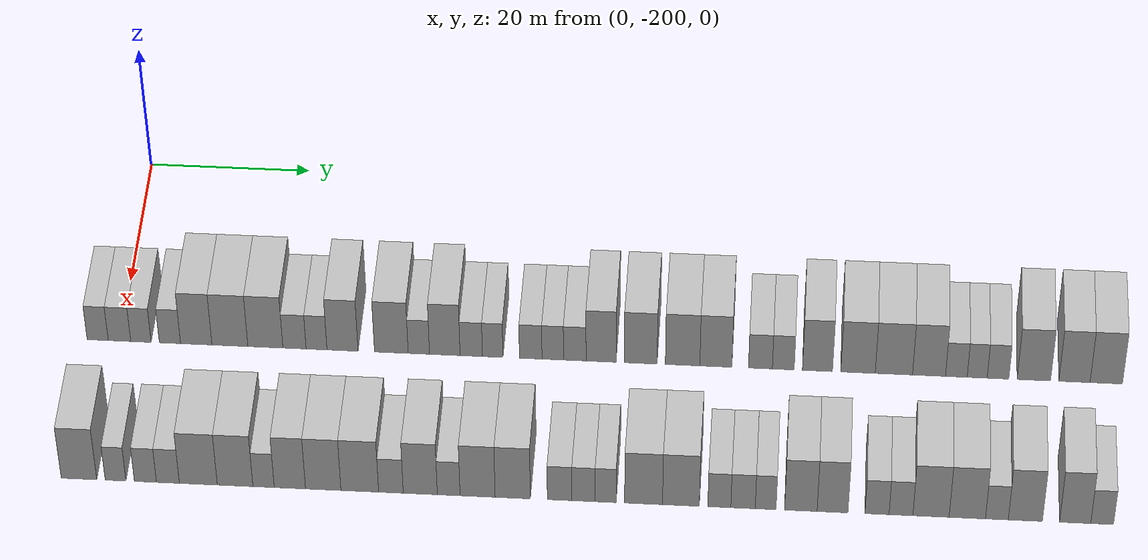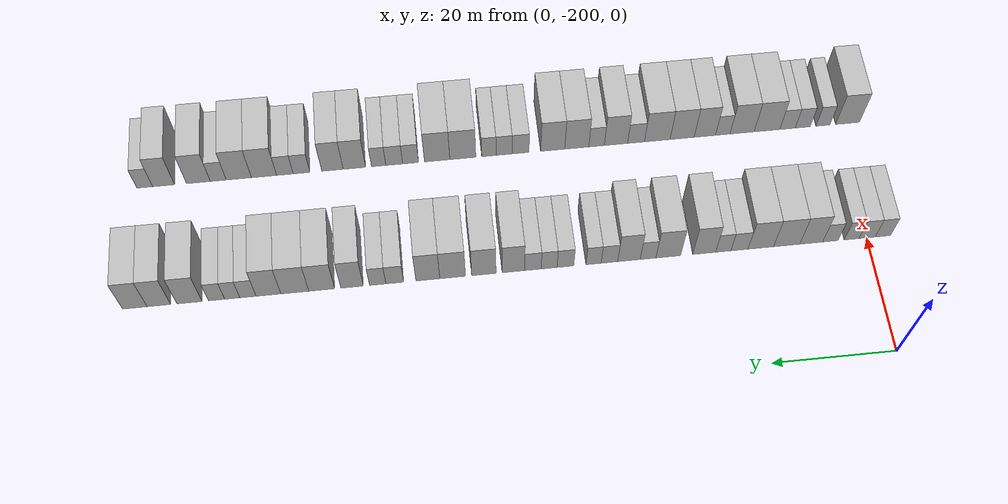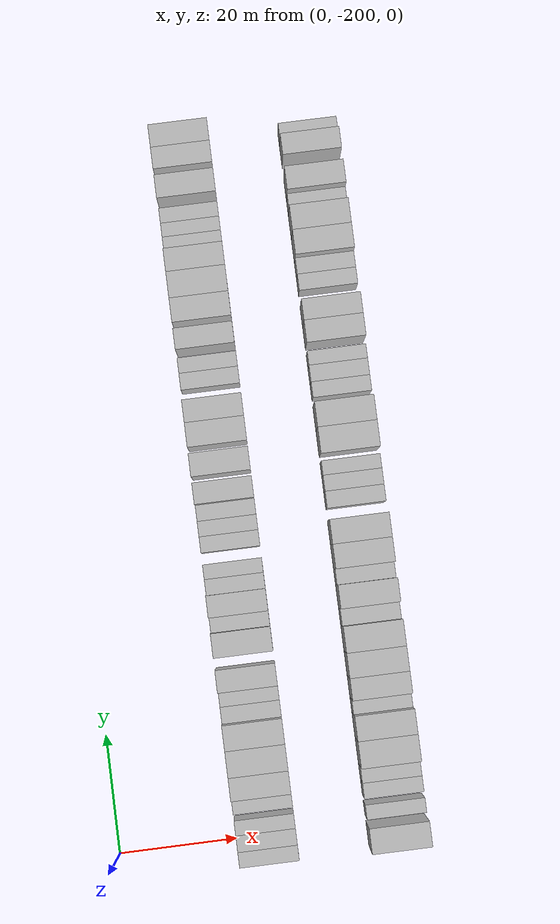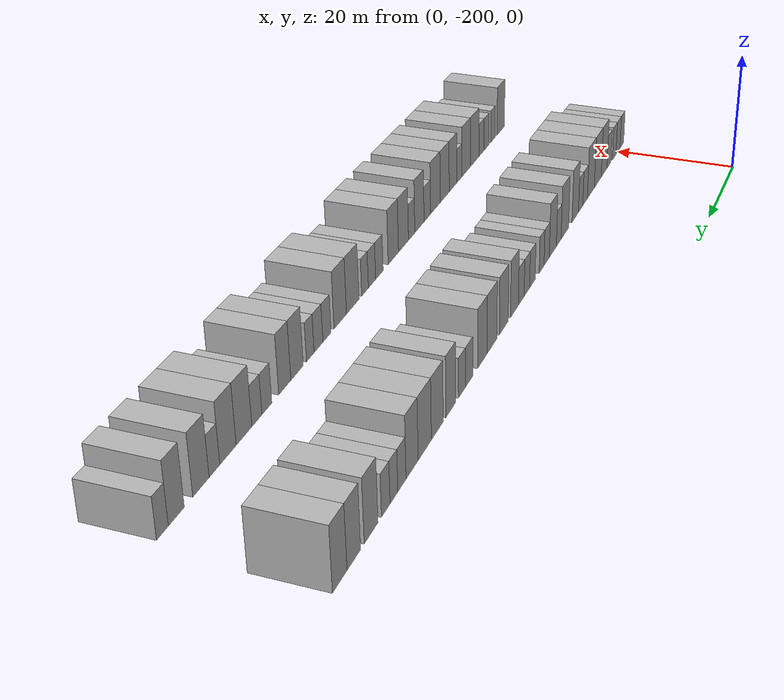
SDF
<sdf version="1.6">
 <world name="default">
  <model name="building_1">
   <static>1</static>
   <pose>25.0000 -202.7139 0 0.000000 0.000000 0.000000</pose>
   <link name="link">
    <pose>0 0 3.00 0 0 0</pose>
    <collision name="collision"><geometry><box><size>10.0000 2.5722 6.0000</size></box></geometry></collision>
    <visual name="visual">
     <cast_shadows>0</cast_shadows>
     <geometry><box><size>10.0000 2.5722 6.0000</size></box></geometry>
     <material>
      <script>
       <uri>model://HANNAS_wall/materials/scripts</uri>
       <uri>model://HANNAS_wall/materials/textures</uri>
       <name>vrc/HANNAS_wall</name>
      </script>
     </material>
    </visual>
   </link>
  </model>
  <model name="building_2">
   <static>1</static>
   <pose>25.0000 -200.0538 0 0.000000 0.000000 0.000000</pose>
   <link name="link">
    <pose>0 0 3.00 0 0 0</pose>
    <collision name="collision"><geometry><box><size>10.0000 2.7478 6.0000</size></box></geometry></collision>
    <visual name="visual">
     <cast_shadows>0</cast_shadows>
     <geometry><box><size>10.0000 2.7478 6.0000</size></box></geometry>
     <material>
      <script>
       <uri>model://HANNAS_wall/materials/scripts</uri>
       <uri>model://HANNAS_wall/materials/textures</uri>
       <name>vrc/HANNAS_wall</name>
      </script>
     </material>
    </visual>
   </link>
  </model>
  <model name="building_3">
   <static>1</static>
   <pose>25.0000 -197.4349 0 0.000000 0.000000 0.000000</pose>
   <link name="link">
    <pose>0 0 3.00 0 0 0</pose>
    <collision name="collision"><geometry><box><size>10.0000 2.4899 6.0000</size></box></geometry></collision>
    <visual name="visual">
     <cast_shadows>0</cast_shadows>
     <geometry><box><size>10.0000 2.4899 6.0000</size></box></geometry>
     <material>
      <script>
       <uri>model://HANNAS_wall/materials/scripts</uri>
       <uri>model://HANNAS_wall/materials/textures</uri>
       <name>vrc/HANNAS_wall</name>
      </script>
     </material>
    </visual>
   </link>
  </model>
  <model name="building_4">
   <static>1</static>
   <pose>25.0000 -193.8955 0 0.000000 0.000000 0.000000</pose>
   <link name="link">
    <pose>0 0 3.00 0 0 0</pose>
    <collision name="collision"><geometry><box><size>10.0000 2.5889 6.0000</size></box></geometry></collision>
    <visual name="visual">
     <cast_shadows>0</cast_shadows>
     <geometry><box><size>10.0000 2.5889 6.0000</size></box></geometry>
     <material>
      <script>
       <uri>model://HANNAS_wall/materials/scripts</uri>
       <uri>model://HANNAS_wall/materials/textures</uri>
       <name>vrc/HANNAS_wall</name>
      </script>
     </material>
    </visual>
   </link>
  </model>
  <model name="building_5">
   <static>1</static>
   <pose>25.0000 -190.6873 0 0.000000 0.000000 0.000000</pose>
   <link name="link">
    <pose>0 0 4.50 0 0 0</pose>
    <collision name="collision"><geometry><box><size>10.0000 3.8274 9.0000</size></box></geometry></collision>
    <visual name="visual">
     <cast_shadows>0</cast_shadows>
     <geometry><box><size>10.0000 3.8274 9.0000</size></box></geometry>
     <material>
      <script>
       <uri>model://HANNAS_wall/materials/scripts</uri>
       <uri>model://HANNAS_wall/materials/textures</uri>
       <name>vrc/HANNAS_wall</name>
      </script>
     </material>
    </visual>
   </link>
  </model>
  <model name="building_6">
   <static>1</static>
   <pose>25.0000 -186.5824 0 0.000000 0.000000 0.000000</pose>
   <link name="link">
    <pose>0 0 4.50 0 0 0</pose>
    <collision name="collision"><geometry><box><size>10.0000 4.3826 9.0000</size></box></geometry></collision>
    <visual name="visual">
     <cast_shadows>0</cast_shadows>
     <geometry><box><size>10.0000 4.3826 9.0000</size></box></geometry>
     <material>
      <script>
       <uri>model://HANNAS_wall/materials/scripts</uri>
       <uri>model://HANNAS_wall/materials/textures</uri>
       <name>vrc/HANNAS_wall</name>
      </script>
     </material>
    </visual>
   </link>
  </model>
  <model name="building_7">
   <static>1</static>
   <pose>25.0000 -182.2598 0 0.000000 0.000000 0.000000</pose>
   <link name="link">
    <pose>0 0 4.50 0 0 0</pose>
    <collision name="collision"><geometry><box><size>10.0000 4.2625 9.0000</size></box></geometry></collision>
    <visual name="visual">
     <cast_shadows>0</cast_shadows>
     <geometry><box><size>10.0000 4.2625 9.0000</size></box></geometry>
     <material>
      <script>
       <uri>model://HANNAS_wall/materials/scripts</uri>
       <uri>model://HANNAS_wall/materials/textures</uri>
       <name>vrc/HANNAS_wall</name>
      </script>
     </material>
    </visual>
   </link>
  </model>
  <model name="building_8">
   <static>1</static>
   <pose>25.0000 -178.7155 0 0.000000 0.000000 0.000000</pose>
   <link name="link">
    <pose>0 0 3.00 0 0 0</pose>
    <collision name="collision"><geometry><box><size>10.0000 2.8261 6.0000</size></box></geometry></collision>
    <visual name="visual">
     <cast_shadows>0</cast_shadows>
     <geometry><box><size>10.0000 2.8261 6.0000</size></box></geometry>
     <material>
      <script>
       <uri>model://HANNAS_wall/materials/scripts</uri>
       <uri>model://HANNAS_wall/materials/textures</uri>
       <name>vrc/HANNAS_wall</name>
      </script>
     </material>
    </visual>
   </link>
  </model>
  <model name="building_9">
   <static>1</static>
   <pose>25.0000 -176.0333 0 0.000000 0.000000 0.000000</pose>
   <link name="link">
    <pose>0 0 3.00 0 0 0</pose>
    <collision name="collision"><geometry><box><size>10.0000 2.5383 6.0000</size></box></geometry></collision>
    <visual name="visual">
     <cast_shadows>0</cast_shadows>
     <geometry><box><size>10.0000 2.5383 6.0000</size></box></geometry>
     <material>
      <script>
       <uri>model://HANNAS_wall/materials/scripts</uri>
       <uri>model://HANNAS_wall/materials/textures</uri>
       <name>vrc/HANNAS_wall</name>
      </script>
     </material>
    </visual>
   </link>
  </model>
  <model name="building_10">
   <static>1</static>
   <pose>25.0000 -172.8733 0 0.000000 0.000000 0.000000</pose>
   <link name="link">
    <pose>0 0 4.50 0 0 0</pose>
    <collision name="collision"><geometry><box><size>10.0000 3.7818 9.0000</size></box></geometry></collision>
    <visual name="visual">
     <cast_shadows>0</cast_shadows>
     <geometry><box><size>10.0000 3.7818 9.0000</size></box></geometry>
     <material>
      <script>
       <uri>model://HANNAS_wall/materials/scripts</uri>
       <uri>model://HANNAS_wall/materials/textures</uri>
       <name>vrc/HANNAS_wall</name>
      </script>
     </material>
    </visual>
   </link>
  </model>
  <model name="building_11">
   <static>1</static>
   <pose>25.0000 -166.9382 0 0.000000 0.000000 0.000000</pose>
   <link name="link">
    <pose>0 0 4.50 0 0 0</pose>
    <collision name="collision"><geometry><box><size>10.0000 4.0884 9.0000</size></box></geometry></collision>
    <visual name="visual">
     <cast_shadows>0</cast_shadows>
     <geometry><box><size>10.0000 4.0884 9.0000</size></box></geometry>
     <material>
      <script>
       <uri>model://HANNAS_wall/materials/scripts</uri>
       <uri>model://HANNAS_wall/materials/textures</uri>
       <name>vrc/HANNAS_wall</name>
      </script>
     </material>
    </visual>
   </link>
  </model>
  <model name="building_12">
   <static>1</static>
   <pose>25.0000 -163.5967 0 0.000000 0.000000 0.000000</pose>
   <link name="link">
    <pose>0 0 3.00 0 0 0</pose>
    <collision name="collision"><geometry><box><size>10.0000 2.5944 6.0000</size></box></geometry></collision>
    <visual name="visual">
     <cast_shadows>0</cast_shadows>
     <geometry><box><size>10.0000 2.5944 6.0000</size></box></geometry>
     <material>
      <script>
       <uri>model://HANNAS_wall/materials/scripts</uri>
       <uri>model://HANNAS_wall/materials/textures</uri>
       <name>vrc/HANNAS_wall</name>
      </script>
     </material>
    </visual>
   </link>
  </model>
  <model name="building_13">
   <static>1</static>
   <pose>25.0000 -160.4428 0 0.000000 0.000000 0.000000</pose>
   <link name="link">
    <pose>0 0 4.50 0 0 0</pose>
    <collision name="collision"><geometry><box><size>10.0000 3.7134 9.0000</size></box></geometry></collision>
    <visual name="visual">
     <cast_shadows>0</cast_shadows>
     <geometry><box><size>10.0000 3.7134 9.0000</size></box></geometry>
     <material>
      <script>
       <uri>model://HANNAS_wall/materials/scripts</uri>
       <uri>model://HANNAS_wall/materials/textures</uri>
       <name>vrc/HANNAS_wall</name>
      </script>
     </material>
    </visual>
   </link>
  </model>
  <model name="building_14">
   <static>1</static>
   <pose>25.0000 -157.2319 0 0.000000 0.000000 0.000000</pose>
   <link name="link">
    <pose>0 0 3.00 0 0 0</pose>
    <collision name="collision"><geometry><box><size>10.0000 2.7084 6.0000</size></box></geometry></collision>
    <visual name="visual">
     <cast_shadows>0</cast_shadows>
     <geometry><box><size>10.0000 2.7084 6.0000</size></box></geometry>
     <material>
      <script>
       <uri>model://HANNAS_wall/materials/scripts</uri>
       <uri>model://HANNAS_wall/materials/textures</uri>
       <name>vrc/HANNAS_wall</name>
      </script>
     </material>
    </visual>
   </link>
  </model>
  <model name="building_15">
   <static>1</static>
   <pose>25.0000 -154.6331 0 0.000000 0.000000 0.000000</pose>
   <link name="link">
    <pose>0 0 3.00 0 0 0</pose>
    <collision name="collision"><geometry><box><size>10.0000 2.4892 6.0000</size></box></geometry></collision>
    <visual name="visual">
     <cast_shadows>0</cast_shadows>
     <geometry><box><size>10.0000 2.4892 6.0000</size></box></geometry>
     <material>
      <script>
       <uri>model://HANNAS_wall/materials/scripts</uri>
       <uri>model://HANNAS_wall/materials/textures</uri>
       <name>vrc/HANNAS_wall</name>
      </script>
     </material>
    </visual>
   </link>
  </model>
  <model name="building_16">
   <static>1</static>
   <pose>25.0000 -150.0213 0 0.000000 0.000000 0.000000</pose>
   <link name="link">
    <pose>0 0 3.00 0 0 0</pose>
    <collision name="collision"><geometry><box><size>10.0000 2.7342 6.0000</size></box></geometry></collision>
    <visual name="visual">
     <cast_shadows>0</cast_shadows>
     <geometry><box><size>10.0000 2.7342 6.0000</size></box></geometry>
     <material>
      <script>
       <uri>model://HANNAS_wall/materials/scripts</uri>
       <uri>model://HANNAS_wall/materials/textures</uri>
       <name>vrc/HANNAS_wall</name>
      </script>
     </material>
    </visual>
   </link>
  </model>
  <model name="building_17">
   <static>1</static>
   <pose>25.0000 -147.3507 0 0.000000 0.000000 0.000000</pose>
   <link name="link">
    <pose>0 0 3.00 0 0 0</pose>
    <collision name="collision"><geometry><box><size>10.0000 2.6071 6.0000</size></box></geometry></collision>
    <visual name="visual">
     <cast_shadows>0</cast_shadows>
     <geometry><box><size>10.0000 2.6071 6.0000</size></box></geometry>
     <material>
      <script>
       <uri>model://HANNAS_wall/materials/scripts</uri>
       <uri>model://HANNAS_wall/materials/textures</uri>
       <name>vrc/HANNAS_wall</name>
      </script>
     </material>
    </visual>
   </link>
  </model>
  <model name="building_18">
   <static>1</static>
   <pose>25.0000 -144.6837 0 0.000000 0.000000 0.000000</pose>
   <link name="link">
    <pose>0 0 3.00 0 0 0</pose>
    <collision name="collision"><geometry><box><size>10.0000 2.7267 6.0000</size></box></geometry></collision>
    <visual name="visual">
     <cast_shadows>0</cast_shadows>
     <geometry><box><size>10.0000 2.7267 6.0000</size></box></geometry>
     <material>
      <script>
       <uri>model://HANNAS_wall/materials/scripts</uri>
       <uri>model://HANNAS_wall/materials/textures</uri>
       <name>vrc/HANNAS_wall</name>
      </script>
     </material>
    </visual>
   </link>
  </model>
  <model name="building_19">
   <static>1</static>
   <pose>25.0000 -141.5038 0 0.000000 0.000000 0.000000</pose>
   <link name="link">
    <pose>0 0 4.50 0 0 0</pose>
    <collision name="collision"><geometry><box><size>10.0000 3.6330 9.0000</size></box></geometry></collision>
    <visual name="visual">
     <cast_shadows>0</cast_shadows>
     <geometry><box><size>10.0000 3.6330 9.0000</size></box></geometry>
     <material>
      <script>
       <uri>model://HANNAS_wall/materials/scripts</uri>
       <uri>model://HANNAS_wall/materials/textures</uri>
       <name>vrc/HANNAS_wall</name>
      </script>
     </material>
    </visual>
   </link>
  </model>
  <model name="building_20">
   <static>1</static>
   <pose>25.0000 -136.7051 0 0.000000 0.000000 0.000000</pose>
   <link name="link">
    <pose>0 0 4.50 0 0 0</pose>
    <collision name="collision"><geometry><box><size>10.0000 3.9644 9.0000</size></box></geometry></collision>
    <visual name="visual">
     <cast_shadows>0</cast_shadows>
     <geometry><box><size>10.0000 3.9644 9.0000</size></box></geometry>
     <material>
      <script>
       <uri>model://HANNAS_wall/materials/scripts</uri>
       <uri>model://HANNAS_wall/materials/textures</uri>
       <name>vrc/HANNAS_wall</name>
      </script>
     </material>
    </visual>
   </link>
  </model>
  <model name="building_21">
   <static>1</static>
   <pose>25.0000 -131.6395 0 0.000000 0.000000 0.000000</pose>
   <link name="link">
    <pose>0 0 4.50 0 0 0</pose>
    <collision name="collision"><geometry><box><size>10.0000 4.1667 9.0000</size></box></geometry></collision>
    <visual name="visual">
     <cast_shadows>0</cast_shadows>
     <geometry><box><size>10.0000 4.1667 9.0000</size></box></geometry>
     <material>
      <script>
       <uri>model://HANNAS_wall/materials/scripts</uri>
       <uri>model://HANNAS_wall/materials/textures</uri>
       <name>vrc/HANNAS_wall</name>
      </script>
     </material>
    </visual>
   </link>
  </model>
  <model name="building_22">
   <static>1</static>
   <pose>25.0000 -127.6203 0 0.000000 0.000000 0.000000</pose>
   <link name="link">
    <pose>0 0 4.50 0 0 0</pose>
    <collision name="collision"><geometry><box><size>10.0000 3.8717 9.0000</size></box></geometry></collision>
    <visual name="visual">
     <cast_shadows>0</cast_shadows>
     <geometry><box><size>10.0000 3.8717 9.0000</size></box></geometry>
     <material>
      <script>
       <uri>model://HANNAS_wall/materials/scripts</uri>
       <uri>model://HANNAS_wall/materials/textures</uri>
       <name>vrc/HANNAS_wall</name>
      </script>
     </material>
    </visual>
   </link>
  </model>
  <model name="building_23">
   <static>1</static>
   <pose>25.0000 -122.2472 0 0.000000 0.000000 0.000000</pose>
   <link name="link">
    <pose>0 0 3.00 0 0 0</pose>
    <collision name="collision"><geometry><box><size>10.0000 2.8745 6.0000</size></box></geometry></collision>
    <visual name="visual">
     <cast_shadows>0</cast_shadows>
     <geometry><box><size>10.0000 2.8745 6.0000</size></box></geometry>
     <material>
      <script>
       <uri>model://HANNAS_wall/materials/scripts</uri>
       <uri>model://HANNAS_wall/materials/textures</uri>
       <name>vrc/HANNAS_wall</name>
      </script>
     </material>
    </visual>
   </link>
  </model>
  <model name="building_24">
   <static>1</static>
   <pose>25.0000 -119.4918 0 0.000000 0.000000 0.000000</pose>
   <link name="link">
    <pose>0 0 3.00 0 0 0</pose>
    <collision name="collision"><geometry><box><size>10.0000 2.6363 6.0000</size></box></geometry></collision>
    <visual name="visual">
     <cast_shadows>0</cast_shadows>
     <geometry><box><size>10.0000 2.6363 6.0000</size></box></geometry>
     <material>
      <script>
       <uri>model://HANNAS_wall/materials/scripts</uri>
       <uri>model://HANNAS_wall/materials/textures</uri>
       <name>vrc/HANNAS_wall</name>
      </script>
     </material>
    </visual>
   </link>
  </model>
  <model name="building_25">
   <static>1</static>
   <pose>25.0000 -115.3635 0 0.000000 0.000000 0.000000</pose>
   <link name="link">
    <pose>0 0 4.50 0 0 0</pose>
    <collision name="collision"><geometry><box><size>10.0000 3.6204 9.0000</size></box></geometry></collision>
    <visual name="visual">
     <cast_shadows>0</cast_shadows>
     <geometry><box><size>10.0000 3.6204 9.0000</size></box></geometry>
     <material>
      <script>
       <uri>model://HANNAS_wall/materials/scripts</uri>
       <uri>model://HANNAS_wall/materials/textures</uri>
       <name>vrc/HANNAS_wall</name>
      </script>
     </material>
    </visual>
   </link>
  </model>
  <model name="building_26">
   <static>1</static>
   <pose>25.0000 -110.4775 0 0.000000 0.000000 0.000000</pose>
   <link name="link">
    <pose>0 0 4.50 0 0 0</pose>
    <collision name="collision"><geometry><box><size>10.0000 4.1515 9.0000</size></box></geometry></collision>
    <visual name="visual">
     <cast_shadows>0</cast_shadows>
     <geometry><box><size>10.0000 4.1515 9.0000</size></box></geometry>
     <material>
      <script>
       <uri>model://HANNAS_wall/materials/scripts</uri>
       <uri>model://HANNAS_wall/materials/textures</uri>
       <name>vrc/HANNAS_wall</name>
      </script>
     </material>
    </visual>
   </link>
  </model>
  <model name="building_27">
   <static>1</static>
   <pose>25.0000 -106.1570 0 0.000000 0.000000 0.000000</pose>
   <link name="link">
    <pose>0 0 4.50 0 0 0</pose>
    <collision name="collision"><geometry><box><size>10.0000 4.4896 9.0000</size></box></geometry></collision>
    <visual name="visual">
     <cast_shadows>0</cast_shadows>
     <geometry><box><size>10.0000 4.4896 9.0000</size></box></geometry>
     <material>
      <script>
       <uri>model://HANNAS_wall/materials/scripts</uri>
       <uri>model://HANNAS_wall/materials/textures</uri>
       <name>vrc/HANNAS_wall</name>
      </script>
     </material>
    </visual>
   </link>
  </model>
  <model name="building_28">
   <static>1</static>
   <pose>25.0000 -101.9284 0 0.000000 0.000000 0.000000</pose>
   <link name="link">
    <pose>0 0 4.50 0 0 0</pose>
    <collision name="collision"><geometry><box><size>10.0000 3.9677 9.0000</size></box></geometry></collision>
    <visual name="visual">
     <cast_shadows>0</cast_shadows>
     <geometry><box><size>10.0000 3.9677 9.0000</size></box></geometry>
     <material>
      <script>
       <uri>model://HANNAS_wall/materials/scripts</uri>
       <uri>model://HANNAS_wall/materials/textures</uri>
       <name>vrc/HANNAS_wall</name>
      </script>
     </material>
    </visual>
   </link>
  </model>
  <model name="building_29">
   <static>1</static>
   <pose>25.0000 -98.6399 0 0.000000 0.000000 0.000000</pose>
   <link name="link">
    <pose>0 0 3.00 0 0 0</pose>
    <collision name="collision"><geometry><box><size>10.0000 2.6093 6.0000</size></box></geometry></collision>
    <visual name="visual">
     <cast_shadows>0</cast_shadows>
     <geometry><box><size>10.0000 2.6093 6.0000</size></box></geometry>
     <material>
      <script>
       <uri>model://HANNAS_wall/materials/scripts</uri>
       <uri>model://HANNAS_wall/materials/textures</uri>
       <name>vrc/HANNAS_wall</name>
      </script>
     </material>
    </visual>
   </link>
  </model>
  <model name="building_30">
   <static>1</static>
   <pose>25.0000 -96.1334 0 0.000000 0.000000 0.000000</pose>
   <link name="link">
    <pose>0 0 3.00 0 0 0</pose>
    <collision name="collision"><geometry><box><size>10.0000 2.4037 6.0000</size></box></geometry></collision>
    <visual name="visual">
     <cast_shadows>0</cast_shadows>
     <geometry><box><size>10.0000 2.4037 6.0000</size></box></geometry>
     <material>
      <script>
       <uri>model://HANNAS_wall/materials/scripts</uri>
       <uri>model://HANNAS_wall/materials/textures</uri>
       <name>vrc/HANNAS_wall</name>
      </script>
     </material>
    </visual>
   </link>
  </model>
  <model name="building_31">
   <static>1</static>
   <pose>25.0000 -93.6312 0 0.000000 0.000000 0.000000</pose>
   <link name="link">
    <pose>0 0 3.00 0 0 0</pose>
    <collision name="collision"><geometry><box><size>10.0000 2.6006 6.0000</size></box></geometry></collision>
    <visual name="visual">
     <cast_shadows>0</cast_shadows>
     <geometry><box><size>10.0000 2.6006 6.0000</size></box></geometry>
     <material>
      <script>
       <uri>model://HANNAS_wall/materials/scripts</uri>
       <uri>model://HANNAS_wall/materials/textures</uri>
       <name>vrc/HANNAS_wall</name>
      </script>
     </material>
    </visual>
   </link>
  </model>
  <model name="building_32">
   <static>1</static>
   <pose>25.0000 -89.3238 0 0.000000 0.000000 0.000000</pose>
   <link name="link">
    <pose>0 0 4.50 0 0 0</pose>
    <collision name="collision"><geometry><box><size>10.0000 4.0141 9.0000</size></box></geometry></collision>
    <visual name="visual">
     <cast_shadows>0</cast_shadows>
     <geometry><box><size>10.0000 4.0141 9.0000</size></box></geometry>
     <material>
      <script>
       <uri>model://HANNAS_wall/materials/scripts</uri>
       <uri>model://HANNAS_wall/materials/textures</uri>
       <name>vrc/HANNAS_wall</name>
      </script>
     </material>
    </visual>
   </link>
  </model>
  <model name="building_33">
   <static>1</static>
   <pose>25.0000 -84.4462 0 0.000000 0.000000 0.000000</pose>
   <link name="link">
    <pose>0 0 4.50 0 0 0</pose>
    <collision name="collision"><geometry><box><size>10.0000 3.7413 9.0000</size></box></geometry></collision>
    <visual name="visual">
     <cast_shadows>0</cast_shadows>
     <geometry><box><size>10.0000 3.7413 9.0000</size></box></geometry>
     <material>
      <script>
       <uri>model://HANNAS_wall/materials/scripts</uri>
       <uri>model://HANNAS_wall/materials/textures</uri>
       <name>vrc/HANNAS_wall</name>
      </script>
     </material>
    </visual>
   </link>
  </model>
  <model name="building_34">
   <static>1</static>
   <pose>25.0000 -80.6337 0 0.000000 0.000000 0.000000</pose>
   <link name="link">
    <pose>0 0 4.50 0 0 0</pose>
    <collision name="collision"><geometry><box><size>10.0000 3.8836 9.0000</size></box></geometry></collision>
    <visual name="visual">
     <cast_shadows>0</cast_shadows>
     <geometry><box><size>10.0000 3.8836 9.0000</size></box></geometry>
     <material>
      <script>
       <uri>model://HANNAS_wall/materials/scripts</uri>
       <uri>model://HANNAS_wall/materials/textures</uri>
       <name>vrc/HANNAS_wall</name>
      </script>
     </material>
    </visual>
   </link>
  </model>
  <model name="building_106">
   <static>1</static>
   <pose>47.0000 -201.8914 0 0.000000 0.000000 0.000000</pose>
   <link name="link">
    <pose>0 0 4.50 0 0 0</pose>
    <collision name="collision"><geometry><box><size>10.0000 4.2173 9.0000</size></box></geometry></collision>
    <visual name="visual">
     <cast_shadows>0</cast_shadows>
     <geometry><box><size>10.0000 4.2173 9.0000</size></box></geometry>
     <material>
      <script>
       <uri>model://HANNAS_wall/materials/scripts</uri>
       <uri>model://HANNAS_wall/materials/textures</uri>
       <name>vrc/HANNAS_wall</name>
      </script>
     </material>
    </visual>
   </link>
  </model>
  <model name="building_107">
   <static>1</static>
   <pose>47.0000 -197.5536 0 0.000000 0.000000 0.000000</pose>
   <link name="link">
    <pose>0 0 3.00 0 0 0</pose>
    <collision name="collision"><geometry><box><size>10.0000 2.4583 6.0000</size></box></geometry></collision>
    <visual name="visual">
     <cast_shadows>0</cast_shadows>
     <geometry><box><size>10.0000 2.4583 6.0000</size></box></geometry>
     <material>
      <script>
       <uri>model://HANNAS_wall/materials/scripts</uri>
       <uri>model://HANNAS_wall/materials/textures</uri>
       <name>vrc/HANNAS_wall</name>
      </script>
     </material>
    </visual>
   </link>
  </model>
  <model name="building_108">
   <static>1</static>
   <pose>47.0000 -194.0164 0 0.000000 0.000000 0.000000</pose>
   <link name="link">
    <pose>0 0 3.00 0 0 0</pose>
    <collision name="collision"><geometry><box><size>10.0000 2.6161 6.0000</size></box></geometry></collision>
    <visual name="visual">
     <cast_shadows>0</cast_shadows>
     <geometry><box><size>10.0000 2.6161 6.0000</size></box></geometry>
     <material>
      <script>
       <uri>model://HANNAS_wall/materials/scripts</uri>
       <uri>model://HANNAS_wall/materials/textures</uri>
       <name>vrc/HANNAS_wall</name>
      </script>
     </material>
    </visual>
   </link>
  </model>
  <model name="building_109">
   <static>1</static>
   <pose>47.0000 -191.3514 0 0.000000 0.000000 0.000000</pose>
   <link name="link">
    <pose>0 0 3.00 0 0 0</pose>
    <collision name="collision"><geometry><box><size>10.0000 2.7139 6.0000</size></box></geometry></collision>
    <visual name="visual">
     <cast_shadows>0</cast_shadows>
     <geometry><box><size>10.0000 2.7139 6.0000</size></box></geometry>
     <material>
      <script>
       <uri>model://HANNAS_wall/materials/scripts</uri>
       <uri>model://HANNAS_wall/materials/textures</uri>
       <name>vrc/HANNAS_wall</name>
      </script>
     </material>
    </visual>
   </link>
  </model>
  <model name="building_110">
   <static>1</static>
   <pose>47.0000 -187.7495 0 0.000000 0.000000 0.000000</pose>
   <link name="link">
    <pose>0 0 4.50 0 0 0</pose>
    <collision name="collision"><geometry><box><size>10.0000 4.4899 9.0000</size></box></geometry></collision>
    <visual name="visual">
     <cast_shadows>0</cast_shadows>
     <geometry><box><size>10.0000 4.4899 9.0000</size></box></geometry>
     <material>
      <script>
       <uri>model://HANNAS_wall/materials/scripts</uri>
       <uri>model://HANNAS_wall/materials/textures</uri>
       <name>vrc/HANNAS_wall</name>
      </script>
     </material>
    </visual>
   </link>
  </model>
  <model name="building_111">
   <static>1</static>
   <pose>47.0000 -183.3992 0 0.000000 0.000000 0.000000</pose>
   <link name="link">
    <pose>0 0 4.50 0 0 0</pose>
    <collision name="collision"><geometry><box><size>10.0000 4.2108 9.0000</size></box></geometry></collision>
    <visual name="visual">
     <cast_shadows>0</cast_shadows>
     <geometry><box><size>10.0000 4.2108 9.0000</size></box></geometry>
     <material>
      <script>
       <uri>model://HANNAS_wall/materials/scripts</uri>
       <uri>model://HANNAS_wall/materials/textures</uri>
       <name>vrc/HANNAS_wall</name>
      </script>
     </material>
    </visual>
   </link>
  </model>
  <model name="building_112">
   <static>1</static>
   <pose>47.0000 -180.0337 0 0.000000 0.000000 0.000000</pose>
   <link name="link">
    <pose>0 0 3.00 0 0 0</pose>
    <collision name="collision"><geometry><box><size>10.0000 2.5201 6.0000</size></box></geometry></collision>
    <visual name="visual">
     <cast_shadows>0</cast_shadows>
     <geometry><box><size>10.0000 2.5201 6.0000</size></box></geometry>
     <material>
      <script>
       <uri>model://HANNAS_wall/materials/scripts</uri>
       <uri>model://HANNAS_wall/materials/textures</uri>
       <name>vrc/HANNAS_wall</name>
      </script>
     </material>
    </visual>
   </link>
  </model>
  <model name="building_113">
   <static>1</static>
   <pose>47.0000 -176.9265 0 0.000000 0.000000 0.000000</pose>
   <link name="link">
    <pose>0 0 4.50 0 0 0</pose>
    <collision name="collision"><geometry><box><size>10.0000 3.6944 9.0000</size></box></geometry></collision>
    <visual name="visual">
     <cast_shadows>0</cast_shadows>
     <geometry><box><size>10.0000 3.6944 9.0000</size></box></geometry>
     <material>
      <script>
       <uri>model://HANNAS_wall/materials/scripts</uri>
       <uri>model://HANNAS_wall/materials/textures</uri>
       <name>vrc/HANNAS_wall</name>
      </script>
     </material>
    </visual>
   </link>
  </model>
  <model name="building_114">
   <static>1</static>
   <pose>47.0000 -172.9864 0 0.000000 0.000000 0.000000</pose>
   <link name="link">
    <pose>0 0 4.50 0 0 0</pose>
    <collision name="collision"><geometry><box><size>10.0000 4.1857 9.0000</size></box></geometry></collision>
    <visual name="visual">
     <cast_shadows>0</cast_shadows>
     <geometry><box><size>10.0000 4.1857 9.0000</size></box></geometry>
     <material>
      <script>
       <uri>model://HANNAS_wall/materials/scripts</uri>
       <uri>model://HANNAS_wall/materials/textures</uri>
       <name>vrc/HANNAS_wall</name>
      </script>
     </material>
    </visual>
   </link>
  </model>
  <model name="building_115">
   <static>1</static>
   <pose>47.0000 -168.6690 0 0.000000 0.000000 0.000000</pose>
   <link name="link">
    <pose>0 0 4.50 0 0 0</pose>
    <collision name="collision"><geometry><box><size>10.0000 4.4491 9.0000</size></box></geometry></collision>
    <visual name="visual">
     <cast_shadows>0</cast_shadows>
     <geometry><box><size>10.0000 4.4491 9.0000</size></box></geometry>
     <material>
      <script>
       <uri>model://HANNAS_wall/materials/scripts</uri>
       <uri>model://HANNAS_wall/materials/textures</uri>
       <name>vrc/HANNAS_wall</name>
      </script>
     </material>
    </visual>
   </link>
  </model>
  <model name="building_116">
   <static>1</static>
   <pose>47.0000 -164.9905 0 0.000000 0.000000 0.000000</pose>
   <link name="link">
    <pose>0 0 3.00 0 0 0</pose>
    <collision name="collision"><geometry><box><size>10.0000 2.9078 6.0000</size></box></geometry></collision>
    <visual name="visual">
     <cast_shadows>0</cast_shadows>
     <geometry><box><size>10.0000 2.9078 6.0000</size></box></geometry>
     <material>
      <script>
       <uri>model://HANNAS_wall/materials/scripts</uri>
       <uri>model://HANNAS_wall/materials/textures</uri>
       <name>vrc/HANNAS_wall</name>
      </script>
     </material>
    </visual>
   </link>
  </model>
  <model name="building_117">
   <static>1</static>
   <pose>47.0000 -161.5276 0 0.000000 0.000000 0.000000</pose>
   <link name="link">
    <pose>0 0 4.50 0 0 0</pose>
    <collision name="collision"><geometry><box><size>10.0000 4.0180 9.0000</size></box></geometry></collision>
    <visual name="visual">
     <cast_shadows>0</cast_shadows>
     <geometry><box><size>10.0000 4.0180 9.0000</size></box></geometry>
     <material>
      <script>
       <uri>model://HANNAS_wall/materials/scripts</uri>
       <uri>model://HANNAS_wall/materials/textures</uri>
       <name>vrc/HANNAS_wall</name>
      </script>
     </material>
    </visual>
   </link>
  </model>
  <model name="building_118">
   <static>1</static>
   <pose>47.0000 -158.1796 0 0.000000 0.000000 0.000000</pose>
   <link name="link">
    <pose>0 0 3.00 0 0 0</pose>
    <collision name="collision"><geometry><box><size>10.0000 2.6779 6.0000</size></box></geometry></collision>
    <visual name="visual">
     <cast_shadows>0</cast_shadows>
     <geometry><box><size>10.0000 2.6779 6.0000</size></box></geometry>
     <material>
      <script>
       <uri>model://HANNAS_wall/materials/scripts</uri>
       <uri>model://HANNAS_wall/materials/textures</uri>
       <name>vrc/HANNAS_wall</name>
      </script>
     </material>
    </visual>
   </link>
  </model>
  <model name="building_119">
   <static>1</static>
   <pose>47.0000 -154.7746 0 0.000000 0.000000 0.000000</pose>
   <link name="link">
    <pose>0 0 4.50 0 0 0</pose>
    <collision name="collision"><geometry><box><size>10.0000 4.1321 9.0000</size></box></geometry></collision>
    <visual name="visual">
     <cast_shadows>0</cast_shadows>
     <geometry><box><size>10.0000 4.1321 9.0000</size></box></geometry>
     <material>
      <script>
       <uri>model://HANNAS_wall/materials/scripts</uri>
       <uri>model://HANNAS_wall/materials/textures</uri>
       <name>vrc/HANNAS_wall</name>
      </script>
     </material>
    </visual>
   </link>
  </model>
  <model name="building_120">
   <static>1</static>
   <pose>47.0000 -150.6351 0 0.000000 0.000000 0.000000</pose>
   <link name="link">
    <pose>0 0 4.50 0 0 0</pose>
    <collision name="collision"><geometry><box><size>10.0000 4.1469 9.0000</size></box></geometry></collision>
    <visual name="visual">
     <cast_shadows>0</cast_shadows>
     <geometry><box><size>10.0000 4.1469 9.0000</size></box></geometry>
     <material>
      <script>
       <uri>model://HANNAS_wall/materials/scripts</uri>
       <uri>model://HANNAS_wall/materials/textures</uri>
       <name>vrc/HANNAS_wall</name>
      </script>
     </material>
    </visual>
   </link>
  </model>
  <model name="building_121">
   <static>1</static>
   <pose>47.0000 -145.1194 0 0.000000 0.000000 0.000000</pose>
   <link name="link">
    <pose>0 0 3.00 0 0 0</pose>
    <collision name="collision"><geometry><box><size>10.0000 2.8846 6.0000</size></box></geometry></collision>
    <visual name="visual">
     <cast_shadows>0</cast_shadows>
     <geometry><box><size>10.0000 2.8846 6.0000</size></box></geometry>
     <material>
      <script>
       <uri>model://HANNAS_wall/materials/scripts</uri>
       <uri>model://HANNAS_wall/materials/textures</uri>
       <name>vrc/HANNAS_wall</name>
      </script>
     </material>
    </visual>
   </link>
  </model>
  <model name="building_122">
   <static>1</static>
   <pose>47.0000 -142.3127 0 0.000000 0.000000 0.000000</pose>
   <link name="link">
    <pose>0 0 3.00 0 0 0</pose>
    <collision name="collision"><geometry><box><size>10.0000 2.7288 6.0000</size></box></geometry></collision>
    <visual name="visual">
     <cast_shadows>0</cast_shadows>
     <geometry><box><size>10.0000 2.7288 6.0000</size></box></geometry>
     <material>
      <script>
       <uri>model://HANNAS_wall/materials/scripts</uri>
       <uri>model://HANNAS_wall/materials/textures</uri>
       <name>vrc/HANNAS_wall</name>
      </script>
     </material>
    </visual>
   </link>
  </model>
  <model name="building_123">
   <static>1</static>
   <pose>47.0000 -139.7141 0 0.000000 0.000000 0.000000</pose>
   <link name="link">
    <pose>0 0 3.00 0 0 0</pose>
    <collision name="collision"><geometry><box><size>10.0000 2.4684 6.0000</size></box></geometry></collision>
    <visual name="visual">
     <cast_shadows>0</cast_shadows>
     <geometry><box><size>10.0000 2.4684 6.0000</size></box></geometry>
     <material>
      <script>
       <uri>model://HANNAS_wall/materials/scripts</uri>
       <uri>model://HANNAS_wall/materials/textures</uri>
       <name>vrc/HANNAS_wall</name>
      </script>
     </material>
    </visual>
   </link>
  </model>
  <model name="building_124">
   <static>1</static>
   <pose>47.0000 -135.2535 0 0.000000 0.000000 0.000000</pose>
   <link name="link">
    <pose>0 0 4.50 0 0 0</pose>
    <collision name="collision"><geometry><box><size>10.0000 4.4529 9.0000</size></box></geometry></collision>
    <visual name="visual">
     <cast_shadows>0</cast_shadows>
     <geometry><box><size>10.0000 4.4529 9.0000</size></box></geometry>
     <material>
      <script>
       <uri>model://HANNAS_wall/materials/scripts</uri>
       <uri>model://HANNAS_wall/materials/textures</uri>
       <name>vrc/HANNAS_wall</name>
      </script>
     </material>
    </visual>
   </link>
  </model>
  <model name="building_125">
   <static>1</static>
   <pose>47.0000 -130.8697 0 0.000000 0.000000 0.000000</pose>
   <link name="link">
    <pose>0 0 4.50 0 0 0</pose>
    <collision name="collision"><geometry><box><size>10.0000 4.3147 9.0000</size></box></geometry></collision>
    <visual name="visual">
     <cast_shadows>0</cast_shadows>
     <geometry><box><size>10.0000 4.3147 9.0000</size></box></geometry>
     <material>
      <script>
       <uri>model://HANNAS_wall/materials/scripts</uri>
       <uri>model://HANNAS_wall/materials/textures</uri>
       <name>vrc/HANNAS_wall</name>
      </script>
     </material>
    </visual>
   </link>
  </model>
  <model name="building_126">
   <static>1</static>
   <pose>47.0000 -126.3610 0 0.000000 0.000000 0.000000</pose>
   <link name="link">
    <pose>0 0 3.00 0 0 0</pose>
    <collision name="collision"><geometry><box><size>10.0000 2.7026 6.0000</size></box></geometry></collision>
    <visual name="visual">
     <cast_shadows>0</cast_shadows>
     <geometry><box><size>10.0000 2.7026 6.0000</size></box></geometry>
     <material>
      <script>
       <uri>model://HANNAS_wall/materials/scripts</uri>
       <uri>model://HANNAS_wall/materials/textures</uri>
       <name>vrc/HANNAS_wall</name>
      </script>
     </material>
    </visual>
   </link>
  </model>
  <model name="building_127">
   <static>1</static>
   <pose>47.0000 -123.5833 0 0.000000 0.000000 0.000000</pose>
   <link name="link">
    <pose>0 0 3.00 0 0 0</pose>
    <collision name="collision"><geometry><box><size>10.0000 2.8527 6.0000</size></box></geometry></collision>
    <visual name="visual">
     <cast_shadows>0</cast_shadows>
     <geometry><box><size>10.0000 2.8527 6.0000</size></box></geometry>
     <material>
      <script>
       <uri>model://HANNAS_wall/materials/scripts</uri>
       <uri>model://HANNAS_wall/materials/textures</uri>
       <name>vrc/HANNAS_wall</name>
      </script>
     </material>
    </visual>
   </link>
  </model>
  <model name="building_128">
   <static>1</static>
   <pose>47.0000 -120.9377 0 0.000000 0.000000 0.000000</pose>
   <link name="link">
    <pose>0 0 3.00 0 0 0</pose>
    <collision name="collision"><geometry><box><size>10.0000 2.4384 6.0000</size></box></geometry></collision>
    <visual name="visual">
     <cast_shadows>0</cast_shadows>
     <geometry><box><size>10.0000 2.4384 6.0000</size></box></geometry>
     <material>
      <script>
       <uri>model://HANNAS_wall/materials/scripts</uri>
       <uri>model://HANNAS_wall/materials/textures</uri>
       <name>vrc/HANNAS_wall</name>
      </script>
     </material>
    </visual>
   </link>
  </model>
  <model name="building_129">
   <static>1</static>
   <pose>47.0000 -116.8153 0 0.000000 0.000000 0.000000</pose>
   <link name="link">
    <pose>0 0 4.50 0 0 0</pose>
    <collision name="collision"><geometry><box><size>10.0000 3.8065 9.0000</size></box></geometry></collision>
    <visual name="visual">
     <cast_shadows>0</cast_shadows>
     <geometry><box><size>10.0000 3.8065 9.0000</size></box></geometry>
     <material>
      <script>
       <uri>model://HANNAS_wall/materials/scripts</uri>
       <uri>model://HANNAS_wall/materials/textures</uri>
       <name>vrc/HANNAS_wall</name>
      </script>
     </material>
    </visual>
   </link>
  </model>
  <model name="building_130">
   <static>1</static>
   <pose>47.0000 -113.1086 0 0.000000 0.000000 0.000000</pose>
   <link name="link">
    <pose>0 0 4.50 0 0 0</pose>
    <collision name="collision"><geometry><box><size>10.0000 3.6067 9.0000</size></box></geometry></collision>
    <visual name="visual">
     <cast_shadows>0</cast_shadows>
     <geometry><box><size>10.0000 3.6067 9.0000</size></box></geometry>
     <material>
      <script>
       <uri>model://HANNAS_wall/materials/scripts</uri>
       <uri>model://HANNAS_wall/materials/textures</uri>
       <name>vrc/HANNAS_wall</name>
      </script>
     </material>
    </visual>
   </link>
  </model>
  <model name="building_131">
   <static>1</static>
   <pose>47.0000 -107.9000 0 0.000000 0.000000 0.000000</pose>
   <link name="link">
    <pose>0 0 3.00 0 0 0</pose>
    <collision name="collision"><geometry><box><size>10.0000 2.8105 6.0000</size></box></geometry></collision>
    <visual name="visual">
     <cast_shadows>0</cast_shadows>
     <geometry><box><size>10.0000 2.8105 6.0000</size></box></geometry>
     <material>
      <script>
       <uri>model://HANNAS_wall/materials/scripts</uri>
       <uri>model://HANNAS_wall/materials/textures</uri>
       <name>vrc/HANNAS_wall</name>
      </script>
     </material>
    </visual>
   </link>
  </model>
  <model name="building_132">
   <static>1</static>
   <pose>47.0000 -105.0991 0 0.000000 0.000000 0.000000</pose>
   <link name="link">
    <pose>0 0 3.00 0 0 0</pose>
    <collision name="collision"><geometry><box><size>10.0000 2.7912 6.0000</size></box></geometry></collision>
    <visual name="visual">
     <cast_shadows>0</cast_shadows>
     <geometry><box><size>10.0000 2.7912 6.0000</size></box></geometry>
     <material>
      <script>
       <uri>model://HANNAS_wall/materials/scripts</uri>
       <uri>model://HANNAS_wall/materials/textures</uri>
       <name>vrc/HANNAS_wall</name>
      </script>
     </material>
    </visual>
   </link>
  </model>
  <model name="building_133">
   <static>1</static>
   <pose>47.0000 -101.5870 0 0.000000 0.000000 0.000000</pose>
   <link name="link">
    <pose>0 0 4.50 0 0 0</pose>
    <collision name="collision"><geometry><box><size>10.0000 4.2331 9.0000</size></box></geometry></collision>
    <visual name="visual">
     <cast_shadows>0</cast_shadows>
     <geometry><box><size>10.0000 4.2331 9.0000</size></box></geometry>
     <material>
      <script>
       <uri>model://HANNAS_wall/materials/scripts</uri>
       <uri>model://HANNAS_wall/materials/textures</uri>
       <name>vrc/HANNAS_wall</name>
      </script>
     </material>
    </visual>
   </link>
  </model>
  <model name="building_134">
   <static>1</static>
   <pose>47.0000 -97.3509 0 0.000000 0.000000 0.000000</pose>
   <link name="link">
    <pose>0 0 4.50 0 0 0</pose>
    <collision name="collision"><geometry><box><size>10.0000 4.2390 9.0000</size></box></geometry></collision>
    <visual name="visual">
     <cast_shadows>0</cast_shadows>
     <geometry><box><size>10.0000 4.2390 9.0000</size></box></geometry>
     <material>
      <script>
       <uri>model://HANNAS_wall/materials/scripts</uri>
       <uri>model://HANNAS_wall/materials/textures</uri>
       <name>vrc/HANNAS_wall</name>
      </script>
     </material>
    </visual>
   </link>
  </model>
  <model name="building_135">
   <static>1</static>
   <pose>47.0000 -93.8980 0 0.000000 0.000000 0.000000</pose>
   <link name="link">
    <pose>0 0 3.00 0 0 0</pose>
    <collision name="collision"><geometry><box><size>10.0000 2.6668 6.0000</size></box></geometry></collision>
    <visual name="visual">
     <cast_shadows>0</cast_shadows>
     <geometry><box><size>10.0000 2.6668 6.0000</size></box></geometry>
     <material>
      <script>
       <uri>model://HANNAS_wall/materials/scripts</uri>
       <uri>model://HANNAS_wall/materials/textures</uri>
       <name>vrc/HANNAS_wall</name>
      </script>
     </material>
    </visual>
   </link>
  </model>
  <model name="building_136">
   <static>1</static>
   <pose>47.0000 -90.5776 0 0.000000 0.000000 0.000000</pose>
   <link name="link">
    <pose>0 0 4.50 0 0 0</pose>
    <collision name="collision"><geometry><box><size>10.0000 3.9739 9.0000</size></box></geometry></collision>
    <visual name="visual">
     <cast_shadows>0</cast_shadows>
     <geometry><box><size>10.0000 3.9739 9.0000</size></box></geometry>
     <material>
      <script>
       <uri>model://HANNAS_wall/materials/scripts</uri>
       <uri>model://HANNAS_wall/materials/textures</uri>
       <name>vrc/HANNAS_wall</name>
      </script>
     </material>
    </visual>
   </link>
  </model>
  <model name="building_137">
   <static>1</static>
   <pose>47.0000 -84.7737 0 0.000000 0.000000 0.000000</pose>
   <link name="link">
    <pose>0 0 4.50 0 0 0</pose>
    <collision name="collision"><geometry><box><size>10.0000 3.6340 9.0000</size></box></geometry></collision>
    <visual name="visual">
     <cast_shadows>0</cast_shadows>
     <geometry><box><size>10.0000 3.6340 9.0000</size></box></geometry>
     <material>
      <script>
       <uri>model://HANNAS_wall/materials/scripts</uri>
       <uri>model://HANNAS_wall/materials/textures</uri>
       <name>vrc/HANNAS_wall</name>
      </script>
     </material>
    </visual>
   </link>
  </model>
  <model name="building_138">
   <static>1</static>
   <pose>47.0000 -81.6301 0 0.000000 0.000000 0.000000</pose>
   <link name="link">
    <pose>0 0 3.00 0 0 0</pose>
    <collision name="collision"><geometry><box><size>10.0000 2.6532 6.0000</size></box></geometry></collision>
    <visual name="visual">
     <cast_shadows>0</cast_shadows>
     <geometry><box><size>10.0000 2.6532 6.0000</size></box></geometry>
     <material>
      <script>
       <uri>model://HANNAS_wall/materials/scripts</uri>
       <uri>model://HANNAS_wall/materials/textures</uri>
       <name>vrc/HANNAS_wall</name>
      </script>
     </material>
    </visual>
   </link>
  </model>
 </world>
</sdf>
